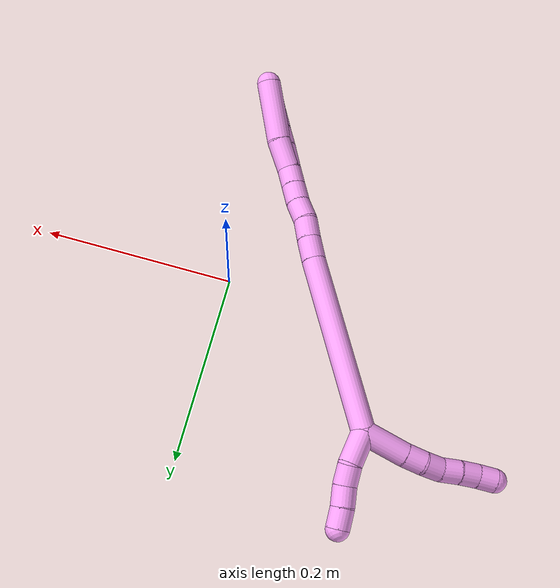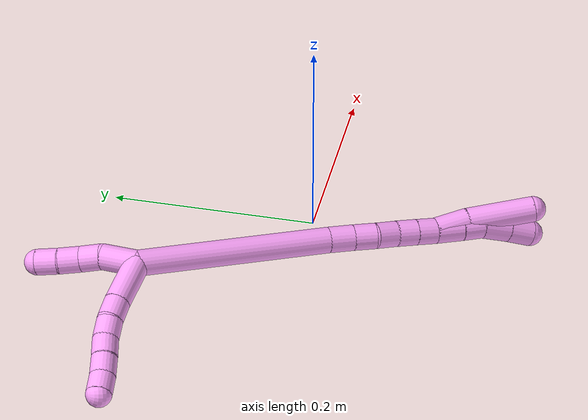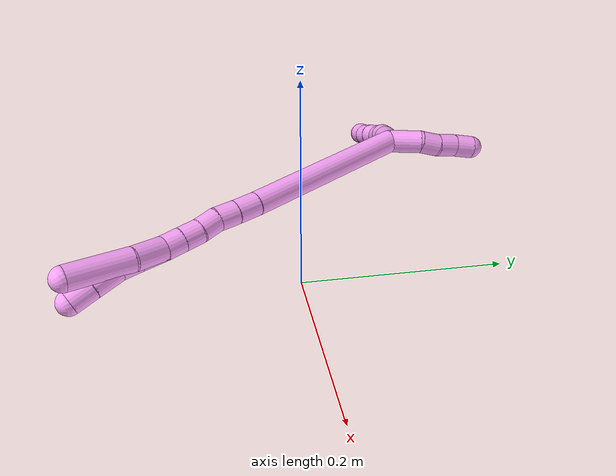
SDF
<sdf version="1.7">
 <world name="default">
  <model name="4">
   <static>0</static>
   <link name="4">
    <collision name="collision-cylinder-e_1_2_8">
     <pose>-0.018037 -0.008372 0.013302 0.561734 -0.854015 -0.261039</pose>
     <geometry><cylinder><radius>0.0125</radius><length>0.047849</length></cylinder></geometry>
     <surface>
      <friction><ode><mu>1.16</mu><mu2>1.16</mu2><slip1>0</slip1><slip2>0</slip2></ode></friction>
      <contact><ode><kp>1e+06</kp><kd>1</kd><max_vel>0</max_vel><min_depth>0.001</min_depth></ode></contact>
     </surface>
    </collision>
    <visual name="visual-cylinder-e_1_2_8">
     <pose>-0.018037 -0.008372 0.013302 0.561734 -0.854015 -0.261039</pose>
     <geometry><cylinder><radius>0.0125</radius><length>0.047849</length></cylinder></geometry>
     <material><ambient>1 0.65098 0.996078 1</ambient></material>
    </visual>
    <collision name="collision-cylinder-e_2_8_9">
     <pose>-0.044212 -0.020985 0.031824 0.682306 -0.880114 -0.331273</pose>
     <geometry><cylinder><radius>0.0125</radius><length>0.021113</length></cylinder></geometry>
     <surface>
      <friction><ode><mu>1.16</mu><mu2>1.16</mu2><slip1>0</slip1><slip2>0</slip2></ode></friction>
      <contact><ode><kp>1e+06</kp><kd>1</kd><max_vel>0</max_vel><min_depth>0.001</min_depth></ode></contact>
     </surface>
    </collision>
    <visual name="visual-cylinder-e_2_8_9">
     <pose>-0.044212 -0.020985 0.031824 0.682306 -0.880114 -0.331273</pose>
     <geometry><cylinder><radius>0.0125</radius><length>0.021113</length></cylinder></geometry>
     <material><ambient>1 0.65098 0.996078 1</ambient></material>
    </visual>
    <collision name="collision-cylinder-e_3_9_10">
     <pose>-0.061203 -0.028341 0.040557 0.725473 -1.08314 -0.448931</pose>
     <geometry><cylinder><radius>0.0125</radius><length>0.020046</length></cylinder></geometry>
     <surface>
      <friction><ode><mu>1.16</mu><mu2>1.16</mu2><slip1>0</slip1><slip2>0</slip2></ode></friction>
      <contact><ode><kp>1e+06</kp><kd>1</kd><max_vel>0</max_vel><min_depth>0.001</min_depth></ode></contact>
     </surface>
    </collision>
    <visual name="visual-cylinder-e_3_9_10">
     <pose>-0.061203 -0.028341 0.040557 0.725473 -1.08314 -0.448931</pose>
     <geometry><cylinder><radius>0.0125</radius><length>0.020046</length></cylinder></geometry>
     <material><ambient>1 0.65098 0.996078 1</ambient></material>
    </visual>
    <collision name="collision-cylinder-e_4_10_11">
     <pose>-0.078517 -0.03679 0.046667 1.11764 -0.959307 -0.628944</pose>
     <geometry><cylinder><radius>0.0125</radius><length>0.020662</length></cylinder></geometry>
     <surface>
      <friction><ode><mu>1.16</mu><mu2>1.16</mu2><slip1>0</slip1><slip2>0</slip2></ode></friction>
      <contact><ode><kp>1e+06</kp><kd>1</kd><max_vel>0</max_vel><min_depth>0.001</min_depth></ode></contact>
     </surface>
    </collision>
    <visual name="visual-cylinder-e_4_10_11">
     <pose>-0.078517 -0.03679 0.046667 1.11764 -0.959307 -0.628944</pose>
     <geometry><cylinder><radius>0.0125</radius><length>0.020662</length></cylinder></geometry>
     <material><ambient>1 0.65098 0.996078 1</ambient></material>
    </visual>
    <collision name="collision-cylinder-e_5_11_12">
     <pose>-0.095707 -0.046557 0.05195 1.02622 -1.03492 -0.620695</pose>
     <geometry><cylinder><radius>0.0125</radius><length>0.02031</length></cylinder></geometry>
     <surface>
      <friction><ode><mu>1.16</mu><mu2>1.16</mu2><slip1>0</slip1><slip2>0</slip2></ode></friction>
      <contact><ode><kp>1e+06</kp><kd>1</kd><max_vel>0</max_vel><min_depth>0.001</min_depth></ode></contact>
     </surface>
    </collision>
    <visual name="visual-cylinder-e_5_11_12">
     <pose>-0.095707 -0.046557 0.05195 1.02622 -1.03492 -0.620695</pose>
     <geometry><cylinder><radius>0.0125</radius><length>0.02031</length></cylinder></geometry>
     <material><ambient>1 0.65098 0.996078 1</ambient></material>
    </visual>
    <collision name="collision-cylinder-e_6_12_6">
     <pose>-0.112358 -0.055895 0.058305 0.928428 -0.912628 -0.482008</pose>
     <geometry><cylinder><radius>0.0125</radius><length>0.02002</length></cylinder></geometry>
     <surface>
      <friction><ode><mu>1.16</mu><mu2>1.16</mu2><slip1>0</slip1><slip2>0</slip2></ode></friction>
      <contact><ode><kp>1e+06</kp><kd>1</kd><max_vel>0</max_vel><min_depth>0.001</min_depth></ode></contact>
     </surface>
    </collision>
    <visual name="visual-cylinder-e_6_12_6">
     <pose>-0.112358 -0.055895 0.058305 0.928428 -0.912628 -0.482008</pose>
     <geometry><cylinder><radius>0.0125</radius><length>0.02002</length></cylinder></geometry>
     <material><ambient>1 0.65098 0.996078 1</ambient></material>
    </visual>
    <collision name="collision-cylinder-e_1_2_13">
     <pose>0.003757 0.010601 0.013533 -0.664531 0.215174 -0.074501</pose>
     <geometry><cylinder><radius>0.0125</radius><length>0.035193</length></cylinder></geometry>
     <surface>
      <friction><ode><mu>1.16</mu><mu2>1.16</mu2><slip1>0</slip1><slip2>0</slip2></ode></friction>
      <contact><ode><kp>1e+06</kp><kd>1</kd><max_vel>0</max_vel><min_depth>0.001</min_depth></ode></contact>
     </surface>
    </collision>
    <visual name="visual-cylinder-e_1_2_13">
     <pose>0.003757 0.010601 0.013533 -0.664531 0.215174 -0.074501</pose>
     <geometry><cylinder><radius>0.0125</radius><length>0.035193</length></cylinder></geometry>
     <material><ambient>1 0.65098 0.996078 1</ambient></material>
    </visual>
    <collision name="collision-cylinder-e_2_13_14">
     <pose>0.006802 0.027953 0.035328 -0.684991 -0.066702 0.02379</pose>
     <geometry><cylinder><radius>0.0125</radius><length>0.021387</length></cylinder></geometry>
     <surface>
      <friction><ode><mu>1.16</mu><mu2>1.16</mu2><slip1>0</slip1><slip2>0</slip2></ode></friction>
      <contact><ode><kp>1e+06</kp><kd>1</kd><max_vel>0</max_vel><min_depth>0.001</min_depth></ode></contact>
     </surface>
    </collision>
    <visual name="visual-cylinder-e_2_13_14">
     <pose>0.006802 0.027953 0.035328 -0.684991 -0.066702 0.02379</pose>
     <geometry><cylinder><radius>0.0125</radius><length>0.021387</length></cylinder></geometry>
     <material><ambient>1 0.65098 0.996078 1</ambient></material>
    </visual>
    <collision name="collision-cylinder-e_3_14_15">
     <pose>0.005557 0.03984 0.053142 -0.493422 -0.048963 0.012333</pose>
     <geometry><cylinder><radius>0.0125</radius><length>0.021715</length></cylinder></geometry>
     <surface>
      <friction><ode><mu>1.16</mu><mu2>1.16</mu2><slip1>0</slip1><slip2>0</slip2></ode></friction>
      <contact><ode><kp>1e+06</kp><kd>1</kd><max_vel>0</max_vel><min_depth>0.001</min_depth></ode></contact>
     </surface>
    </collision>
    <visual name="visual-cylinder-e_3_14_15">
     <pose>0.005557 0.03984 0.053142 -0.493422 -0.048963 0.012333</pose>
     <geometry><cylinder><radius>0.0125</radius><length>0.021715</length></cylinder></geometry>
     <material><ambient>1 0.65098 0.996078 1</ambient></material>
    </visual>
    <collision name="collision-cylinder-e_4_15_5">
     <pose>0.004944 0.051238 0.071557 -0.615063 -0.007596 0.002413</pose>
     <geometry><cylinder><radius>0.0125</radius><length>0.021704</length></cylinder></geometry>
     <surface>
      <friction><ode><mu>1.16</mu><mu2>1.16</mu2><slip1>0</slip1><slip2>0</slip2></ode></friction>
      <contact><ode><kp>1e+06</kp><kd>1</kd><max_vel>0</max_vel><min_depth>0.001</min_depth></ode></contact>
     </surface>
    </collision>
    <visual name="visual-cylinder-e_4_15_5">
     <pose>0.004944 0.051238 0.071557 -0.615063 -0.007596 0.002413</pose>
     <geometry><cylinder><radius>0.0125</radius><length>0.021704</length></cylinder></geometry>
     <material><ambient>1 0.65098 0.996078 1</ambient></material>
    </visual>
    <collision name="collision-cylinder-e_1_2_16">
     <pose>0.0081 -0.005843 -0.094757 3.08001 0.085111 1.88914</pose>
     <geometry><cylinder><radius>0.0125</radius><length>0.190564</length></cylinder></geometry>
     <surface>
      <friction><ode><mu>1.16</mu><mu2>1.16</mu2><slip1>0</slip1><slip2>0</slip2></ode></friction>
      <contact><ode><kp>1e+06</kp><kd>1</kd><max_vel>0</max_vel><min_depth>0.001</min_depth></ode></contact>
     </surface>
    </collision>
    <visual name="visual-cylinder-e_1_2_16">
     <pose>0.0081 -0.005843 -0.094757 3.08001 0.085111 1.88914</pose>
     <geometry><cylinder><radius>0.0125</radius><length>0.190564</length></cylinder></geometry>
     <material><ambient>1 0.65098 0.996078 1</ambient></material>
    </visual>
    <collision name="collision-cylinder-e_2_16_17">
     <pose>0.016953 -0.013046 -0.201765 3.03097 0.061072 1.0083</pose>
     <geometry><cylinder><radius>0.0125</radius><length>0.024698</length></cylinder></geometry>
     <surface>
      <friction><ode><mu>1.16</mu><mu2>1.16</mu2><slip1>0</slip1><slip2>0</slip2></ode></friction>
      <contact><ode><kp>1e+06</kp><kd>1</kd><max_vel>0</max_vel><min_depth>0.001</min_depth></ode></contact>
     </surface>
    </collision>
    <visual name="visual-cylinder-e_2_16_17">
     <pose>0.016953 -0.013046 -0.201765 3.03097 0.061072 1.0083</pose>
     <geometry><cylinder><radius>0.0125</radius><length>0.024698</length></cylinder></geometry>
     <material><ambient>1 0.65098 0.996078 1</ambient></material>
    </visual>
    <collision name="collision-cylinder-e_3_17_18">
     <pose>0.018196 -0.016048 -0.224874 2.99161 0.044469 0.575522</pose>
     <geometry><cylinder><radius>0.0125</radius><length>0.021986</length></cylinder></geometry>
     <surface>
      <friction><ode><mu>1.16</mu><mu2>1.16</mu2><slip1>0</slip1><slip2>0</slip2></ode></friction>
      <contact><ode><kp>1e+06</kp><kd>1</kd><max_vel>0</max_vel><min_depth>0.001</min_depth></ode></contact>
     </surface>
    </collision>
    <visual name="visual-cylinder-e_3_17_18">
     <pose>0.018196 -0.016048 -0.224874 2.99161 0.044469 0.575522</pose>
     <geometry><cylinder><radius>0.0125</radius><length>0.021986</length></cylinder></geometry>
     <material><ambient>1 0.65098 0.996078 1</ambient></material>
    </visual>
    <collision name="collision-cylinder-e_4_18_19">
     <pose>0.019405 -0.01685 -0.246718 -3.06537 0.065315 -1.41685</pose>
     <geometry><cylinder><radius>0.0125</radius><length>0.022081</length></cylinder></geometry>
     <surface>
      <friction><ode><mu>1.16</mu><mu2>1.16</mu2><slip1>0</slip1><slip2>0</slip2></ode></friction>
      <contact><ode><kp>1e+06</kp><kd>1</kd><max_vel>0</max_vel><min_depth>0.001</min_depth></ode></contact>
     </surface>
    </collision>
    <visual name="visual-cylinder-e_4_18_19">
     <pose>0.019405 -0.01685 -0.246718 -3.06537 0.065315 -1.41685</pose>
     <geometry><cylinder><radius>0.0125</radius><length>0.022081</length></cylinder></geometry>
     <material><ambient>1 0.65098 0.996078 1</ambient></material>
    </visual>
    <collision name="collision-cylinder-e_5_19_20">
     <pose>0.020609 -0.016634 -0.267986 3.08114 0.046852 1.31859</pose>
     <geometry><cylinder><radius>0.0125</radius><length>0.020625</length></cylinder></geometry>
     <surface>
      <friction><ode><mu>1.16</mu><mu2>1.16</mu2><slip1>0</slip1><slip2>0</slip2></ode></friction>
      <contact><ode><kp>1e+06</kp><kd>1</kd><max_vel>0</max_vel><min_depth>0.001</min_depth></ode></contact>
     </surface>
    </collision>
    <visual name="visual-cylinder-e_5_19_20">
     <pose>0.020609 -0.016634 -0.267986 3.08114 0.046852 1.31859</pose>
     <geometry><cylinder><radius>0.0125</radius><length>0.020625</length></cylinder></geometry>
     <material><ambient>1 0.65098 0.996078 1</ambient></material>
    </visual>
    <collision name="collision-cylinder-e_6_20_1">
     <pose>0.021476 -0.017867 -0.288265 3.08056 0.038363 1.12217</pose>
     <geometry><cylinder><radius>0.0125</radius><length>0.020046</length></cylinder></geometry>
     <surface>
      <friction><ode><mu>1.16</mu><mu2>1.16</mu2><slip1>0</slip1><slip2>0</slip2></ode></friction>
      <contact><ode><kp>1e+06</kp><kd>1</kd><max_vel>0</max_vel><min_depth>0.001</min_depth></ode></contact>
     </surface>
    </collision>
    <visual name="visual-cylinder-e_6_20_1">
     <pose>0.021476 -0.017867 -0.288265 3.08056 0.038363 1.12217</pose>
     <geometry><cylinder><radius>0.0125</radius><length>0.020046</length></cylinder></geometry>
     <material><ambient>1 0.65098 0.996078 1</ambient></material>
    </visual>
    <collision name="collision-cylinder-e_1_1_21">
     <pose>0.022822 -0.019891 -0.311615 3.03614 0.071478 1.19094</pose>
     <geometry><cylinder><radius>0.0125</radius><length>0.026925</length></cylinder></geometry>
     <surface>
      <friction><ode><mu>1.16</mu><mu2>1.16</mu2><slip1>0</slip1><slip2>0</slip2></ode></friction>
      <contact><ode><kp>1e+06</kp><kd>1</kd><max_vel>0</max_vel><min_depth>0.001</min_depth></ode></contact>
     </surface>
    </collision>
    <visual name="visual-cylinder-e_1_1_21">
     <pose>0.022822 -0.019891 -0.311615 3.03614 0.071478 1.19094</pose>
     <geometry><cylinder><radius>0.0125</radius><length>0.026925</length></cylinder></geometry>
     <material><ambient>1 0.65098 0.996078 1</ambient></material>
    </visual>
    <collision name="collision-cylinder-e_2_21_22">
     <pose>0.024752 -0.022128 -0.335318 3.06213 0.093079 1.72846</pose>
     <geometry><cylinder><radius>0.0125</radius><length>0.020855</length></cylinder></geometry>
     <surface>
      <friction><ode><mu>1.16</mu><mu2>1.16</mu2><slip1>0</slip1><slip2>0</slip2></ode></friction>
      <contact><ode><kp>1e+06</kp><kd>1</kd><max_vel>0</max_vel><min_depth>0.001</min_depth></ode></contact>
     </surface>
    </collision>
    <visual name="visual-cylinder-e_2_21_22">
     <pose>0.024752 -0.022128 -0.335318 3.06213 0.093079 1.72846</pose>
     <geometry><cylinder><radius>0.0125</radius><length>0.020855</length></cylinder></geometry>
     <material><ambient>1 0.65098 0.996078 1</ambient></material>
    </visual>
    <collision name="collision-cylinder-e_3_22_23">
     <pose>0.023664 -0.022375 -0.359403 -3.09953 -0.148597 2.59082</pose>
     <geometry><cylinder><radius>0.0125</radius><length>0.027801</length></cylinder></geometry>
     <surface>
      <friction><ode><mu>1.16</mu><mu2>1.16</mu2><slip1>0</slip1><slip2>0</slip2></ode></friction>
      <contact><ode><kp>1e+06</kp><kd>1</kd><max_vel>0</max_vel><min_depth>0.001</min_depth></ode></contact>
     </surface>
    </collision>
    <visual name="visual-cylinder-e_3_22_23">
     <pose>0.023664 -0.022375 -0.359403 -3.09953 -0.148597 2.59082</pose>
     <geometry><cylinder><radius>0.0125</radius><length>0.027801</length></cylinder></geometry>
     <material><ambient>1 0.65098 0.996078 1</ambient></material>
    </visual>
    <collision name="collision-cylinder-e_4_23_4">
     <pose>0.019259 -0.021299 -0.38511 -3.10007 -0.193402 2.71986</pose>
     <geometry><cylinder><radius>0.0125</radius><length>0.02442</length></cylinder></geometry>
     <surface>
      <friction><ode><mu>1.16</mu><mu2>1.16</mu2><slip1>0</slip1><slip2>0</slip2></ode></friction>
      <contact><ode><kp>1e+06</kp><kd>1</kd><max_vel>0</max_vel><min_depth>0.001</min_depth></ode></contact>
     </surface>
    </collision>
    <visual name="visual-cylinder-e_4_23_4">
     <pose>0.019259 -0.021299 -0.38511 -3.10007 -0.193402 2.71986</pose>
     <geometry><cylinder><radius>0.0125</radius><length>0.02442</length></cylinder></geometry>
     <material><ambient>1 0.65098 0.996078 1</ambient></material>
    </visual>
    <collision name="collision-cylinder-e_1_1_24">
     <pose>0.026195 -0.020128 -0.314547 3.04061 0.258868 2.40096</pose>
     <geometry><cylinder><radius>0.0125</radius><length>0.033865</length></cylinder></geometry>
     <surface>
      <friction><ode><mu>1.16</mu><mu2>1.16</mu2><slip1>0</slip1><slip2>0</slip2></ode></friction>
      <contact><ode><kp>1e+06</kp><kd>1</kd><max_vel>0</max_vel><min_depth>0.001</min_depth></ode></contact>
     </surface>
    </collision>
    <visual name="visual-cylinder-e_1_1_24">
     <pose>0.026195 -0.020128 -0.314547 3.04061 0.258868 2.40096</pose>
     <geometry><cylinder><radius>0.0125</radius><length>0.033865</length></cylinder></geometry>
     <material><ambient>1 0.65098 0.996078 1</ambient></material>
    </visual>
    <collision name="collision-cylinder-e_2_24_3">
     <pose>0.035192 -0.028728 -0.362823 2.92766 0.141462 1.16648</pose>
     <geometry><cylinder><radius>0.0125</radius><length>0.066135</length></cylinder></geometry>
     <surface>
      <friction><ode><mu>1.16</mu><mu2>1.16</mu2><slip1>0</slip1><slip2>0</slip2></ode></friction>
      <contact><ode><kp>1e+06</kp><kd>1</kd><max_vel>0</max_vel><min_depth>0.001</min_depth></ode></contact>
     </surface>
    </collision>
    <visual name="visual-cylinder-e_2_24_3">
     <pose>0.035192 -0.028728 -0.362823 2.92766 0.141462 1.16648</pose>
     <geometry><cylinder><radius>0.0125</radius><length>0.066135</length></cylinder></geometry>
     <material><ambient>1 0.65098 0.996078 1</ambient></material>
    </visual>
    <collision name="collision-sphere-3">
     <pose>0.039854 -0.035678 -0.394813 0 -0 0</pose>
     <geometry><sphere><radius>0.0125</radius></sphere></geometry>
     <surface>
      <friction><ode><mu>1.16</mu><mu2>1.16</mu2><slip1>0</slip1><slip2>0</slip2></ode></friction>
      <contact><ode><kp>1e+06</kp><kd>1</kd><max_vel>0</max_vel><min_depth>0.001</min_depth></ode></contact>
     </surface>
    </collision>
    <visual name="visual-sphere-3">
     <pose>0.039854 -0.035678 -0.394813 0 -0 0</pose>
     <geometry><sphere><radius>0.0125</radius></sphere></geometry>
     <material><ambient>1 0.65098 0.996078 1</ambient></material>
    </visual>
    <collision name="collision-sphere-24">
     <pose>0.030529 -0.021778 -0.330832 0 -0 0</pose>
     <geometry><sphere><radius>0.0125</radius></sphere></geometry>
     <surface>
      <friction><ode><mu>1.16</mu><mu2>1.16</mu2><slip1>0</slip1><slip2>0</slip2></ode></friction>
      <contact><ode><kp>1e+06</kp><kd>1</kd><max_vel>0</max_vel><min_depth>0.001</min_depth></ode></contact>
     </surface>
    </collision>
    <visual name="visual-sphere-24">
     <pose>0.030529 -0.021778 -0.330832 0 -0 0</pose>
     <geometry><sphere><radius>0.0125</radius></sphere></geometry>
     <material><ambient>1 0.65098 0.996078 1</ambient></material>
    </visual>
    <collision name="collision-sphere-4">
     <pose>0.016912 -0.020802 -0.397082 0 -0 0</pose>
     <geometry><sphere><radius>0.0125</radius></sphere></geometry>
     <surface>
      <friction><ode><mu>1.16</mu><mu2>1.16</mu2><slip1>0</slip1><slip2>0</slip2></ode></friction>
      <contact><ode><kp>1e+06</kp><kd>1</kd><max_vel>0</max_vel><min_depth>0.001</min_depth></ode></contact>
     </surface>
    </collision>
    <visual name="visual-sphere-4">
     <pose>0.016912 -0.020802 -0.397082 0 -0 0</pose>
     <geometry><sphere><radius>0.0125</radius></sphere></geometry>
     <material><ambient>1 0.65098 0.996078 1</ambient></material>
    </visual>
    <collision name="collision-sphere-23">
     <pose>0.021606 -0.021797 -0.373138 0 -0 0</pose>
     <geometry><sphere><radius>0.0125</radius></sphere></geometry>
     <surface>
      <friction><ode><mu>1.16</mu><mu2>1.16</mu2><slip1>0</slip1><slip2>0</slip2></ode></friction>
      <contact><ode><kp>1e+06</kp><kd>1</kd><max_vel>0</max_vel><min_depth>0.001</min_depth></ode></contact>
     </surface>
    </collision>
    <visual name="visual-sphere-23">
     <pose>0.021606 -0.021797 -0.373138 0 -0 0</pose>
     <geometry><sphere><radius>0.0125</radius></sphere></geometry>
     <material><ambient>1 0.65098 0.996078 1</ambient></material>
    </visual>
    <collision name="collision-sphere-22">
     <pose>0.025722 -0.022953 -0.345668 0 -0 0</pose>
     <geometry><sphere><radius>0.0125</radius></sphere></geometry>
     <surface>
      <friction><ode><mu>1.16</mu><mu2>1.16</mu2><slip1>0</slip1><slip2>0</slip2></ode></friction>
      <contact><ode><kp>1e+06</kp><kd>1</kd><max_vel>0</max_vel><min_depth>0.001</min_depth></ode></contact>
     </surface>
    </collision>
    <visual name="visual-sphere-22">
     <pose>0.025722 -0.022953 -0.345668 0 -0 0</pose>
     <geometry><sphere><radius>0.0125</radius></sphere></geometry>
     <material><ambient>1 0.65098 0.996078 1</ambient></material>
    </visual>
    <collision name="collision-sphere-21">
     <pose>0.023783 -0.021304 -0.324969 0 -0 0</pose>
     <geometry><sphere><radius>0.0125</radius></sphere></geometry>
     <surface>
      <friction><ode><mu>1.16</mu><mu2>1.16</mu2><slip1>0</slip1><slip2>0</slip2></ode></friction>
      <contact><ode><kp>1e+06</kp><kd>1</kd><max_vel>0</max_vel><min_depth>0.001</min_depth></ode></contact>
     </surface>
    </collision>
    <visual name="visual-sphere-21">
     <pose>0.023783 -0.021304 -0.324969 0 -0 0</pose>
     <geometry><sphere><radius>0.0125</radius></sphere></geometry>
     <material><ambient>1 0.65098 0.996078 1</ambient></material>
    </visual>
    <collision name="collision-sphere-1">
     <pose>0.02186 -0.018478 -0.298262 0 -0 0</pose>
     <geometry><sphere><radius>0.0125</radius></sphere></geometry>
     <surface>
      <friction><ode><mu>1.16</mu><mu2>1.16</mu2><slip1>0</slip1><slip2>0</slip2></ode></friction>
      <contact><ode><kp>1e+06</kp><kd>1</kd><max_vel>0</max_vel><min_depth>0.001</min_depth></ode></contact>
     </surface>
    </collision>
    <visual name="visual-sphere-1">
     <pose>0.02186 -0.018478 -0.298262 0 -0 0</pose>
     <geometry><sphere><radius>0.0125</radius></sphere></geometry>
     <material><ambient>1 0.65098 0.996078 1</ambient></material>
    </visual>
    <collision name="collision-sphere-12">
     <pose>-0.104439 -0.050992 0.054636 0 -0 0</pose>
     <geometry><sphere><radius>0.0125</radius></sphere></geometry>
     <surface>
      <friction><ode><mu>1.16</mu><mu2>1.16</mu2><slip1>0</slip1><slip2>0</slip2></ode></friction>
      <contact><ode><kp>1e+06</kp><kd>1</kd><max_vel>0</max_vel><min_depth>0.001</min_depth></ode></contact>
     </surface>
    </collision>
    <visual name="visual-sphere-12">
     <pose>-0.104439 -0.050992 0.054636 0 -0 0</pose>
     <geometry><sphere><radius>0.0125</radius></sphere></geometry>
     <material><ambient>1 0.65098 0.996078 1</ambient></material>
    </visual>
    <collision name="collision-sphere-11">
     <pose>-0.086976 -0.042122 0.049264 0 -0 0</pose>
     <geometry><sphere><radius>0.0125</radius></sphere></geometry>
     <surface>
      <friction><ode><mu>1.16</mu><mu2>1.16</mu2><slip1>0</slip1><slip2>0</slip2></ode></friction>
      <contact><ode><kp>1e+06</kp><kd>1</kd><max_vel>0</max_vel><min_depth>0.001</min_depth></ode></contact>
     </surface>
    </collision>
    <visual name="visual-sphere-11">
     <pose>-0.086976 -0.042122 0.049264 0 -0 0</pose>
     <geometry><sphere><radius>0.0125</radius></sphere></geometry>
     <material><ambient>1 0.65098 0.996078 1</ambient></material>
    </visual>
    <collision name="collision-sphere-10">
     <pose>-0.070058 -0.031457 0.044071 0 -0 0</pose>
     <geometry><sphere><radius>0.0125</radius></sphere></geometry>
     <surface>
      <friction><ode><mu>1.16</mu><mu2>1.16</mu2><slip1>0</slip1><slip2>0</slip2></ode></friction>
      <contact><ode><kp>1e+06</kp><kd>1</kd><max_vel>0</max_vel><min_depth>0.001</min_depth></ode></contact>
     </surface>
    </collision>
    <visual name="visual-sphere-10">
     <pose>-0.070058 -0.031457 0.044071 0 -0 0</pose>
     <geometry><sphere><radius>0.0125</radius></sphere></geometry>
     <material><ambient>1 0.65098 0.996078 1</ambient></material>
    </visual>
    <collision name="collision-sphere-9">
     <pose>-0.052349 -0.025225 0.037043 0 -0 0</pose>
     <geometry><sphere><radius>0.0125</radius></sphere></geometry>
     <surface>
      <friction><ode><mu>1.16</mu><mu2>1.16</mu2><slip1>0</slip1><slip2>0</slip2></ode></friction>
      <contact><ode><kp>1e+06</kp><kd>1</kd><max_vel>0</max_vel><min_depth>0.001</min_depth></ode></contact>
     </surface>
    </collision>
    <visual name="visual-sphere-9">
     <pose>-0.052349 -0.025225 0.037043 0 -0 0</pose>
     <geometry><sphere><radius>0.0125</radius></sphere></geometry>
     <material><ambient>1 0.65098 0.996078 1</ambient></material>
    </visual>
    <collision name="collision-sphere-2">
     <geometry><sphere><radius>0.0125</radius></sphere></geometry>
     <surface>
      <friction><ode><mu>1.16</mu><mu2>1.16</mu2><slip1>0</slip1><slip2>0</slip2></ode></friction>
      <contact><ode><kp>1e+06</kp><kd>1</kd><max_vel>0</max_vel><min_depth>0.001</min_depth></ode></contact>
     </surface>
    </collision>
    <visual name="visual-sphere-2">
     <geometry><sphere><radius>0.0125</radius></sphere></geometry>
     <material><ambient>1 0.65098 0.996078 1</ambient></material>
    </visual>
    <collision name="collision-sphere-19">
     <pose>0.020126 -0.016011 -0.257704 0 -0 0</pose>
     <geometry><sphere><radius>0.0125</radius></sphere></geometry>
     <surface>
      <friction><ode><mu>1.16</mu><mu2>1.16</mu2><slip1>0</slip1><slip2>0</slip2></ode></friction>
      <contact><ode><kp>1e+06</kp><kd>1</kd><max_vel>0</max_vel><min_depth>0.001</min_depth></ode></contact>
     </surface>
    </collision>
    <visual name="visual-sphere-19">
     <pose>0.020126 -0.016011 -0.257704 0 -0 0</pose>
     <geometry><sphere><radius>0.0125</radius></sphere></geometry>
     <material><ambient>1 0.65098 0.996078 1</ambient></material>
    </visual>
    <collision name="collision-sphere-8">
     <pose>-0.036075 -0.016744 0.026604 0 -0 0</pose>
     <geometry><sphere><radius>0.0125</radius></sphere></geometry>
     <surface>
      <friction><ode><mu>1.16</mu><mu2>1.16</mu2><slip1>0</slip1><slip2>0</slip2></ode></friction>
      <contact><ode><kp>1e+06</kp><kd>1</kd><max_vel>0</max_vel><min_depth>0.001</min_depth></ode></contact>
     </surface>
    </collision>
    <visual name="visual-sphere-8">
     <pose>-0.036075 -0.016744 0.026604 0 -0 0</pose>
     <geometry><sphere><radius>0.0125</radius></sphere></geometry>
     <material><ambient>1 0.65098 0.996078 1</ambient></material>
    </visual>
    <collision name="collision-sphere-6">
     <pose>-0.120277 -0.060797 0.061973 0 -0 0</pose>
     <geometry><sphere><radius>0.0125</radius></sphere></geometry>
     <surface>
      <friction><ode><mu>1.16</mu><mu2>1.16</mu2><slip1>0</slip1><slip2>0</slip2></ode></friction>
      <contact><ode><kp>1e+06</kp><kd>1</kd><max_vel>0</max_vel><min_depth>0.001</min_depth></ode></contact>
     </surface>
    </collision>
    <visual name="visual-sphere-6">
     <pose>-0.120277 -0.060797 0.061973 0 -0 0</pose>
     <geometry><sphere><radius>0.0125</radius></sphere></geometry>
     <material><ambient>1 0.65098 0.996078 1</ambient></material>
    </visual>
    <collision name="collision-sphere-13">
     <pose>0.007514 0.021203 0.027065 0 -0 0</pose>
     <geometry><sphere><radius>0.0125</radius></sphere></geometry>
     <surface>
      <friction><ode><mu>1.16</mu><mu2>1.16</mu2><slip1>0</slip1><slip2>0</slip2></ode></friction>
      <contact><ode><kp>1e+06</kp><kd>1</kd><max_vel>0</max_vel><min_depth>0.001</min_depth></ode></contact>
     </surface>
    </collision>
    <visual name="visual-sphere-13">
     <pose>0.007514 0.021203 0.027065 0 -0 0</pose>
     <geometry><sphere><radius>0.0125</radius></sphere></geometry>
     <material><ambient>1 0.65098 0.996078 1</ambient></material>
    </visual>
    <collision name="collision-sphere-14">
     <pose>0.006089 0.034704 0.043591 0 -0 0</pose>
     <geometry><sphere><radius>0.0125</radius></sphere></geometry>
     <surface>
      <friction><ode><mu>1.16</mu><mu2>1.16</mu2><slip1>0</slip1><slip2>0</slip2></ode></friction>
      <contact><ode><kp>1e+06</kp><kd>1</kd><max_vel>0</max_vel><min_depth>0.001</min_depth></ode></contact>
     </surface>
    </collision>
    <visual name="visual-sphere-14">
     <pose>0.006089 0.034704 0.043591 0 -0 0</pose>
     <geometry><sphere><radius>0.0125</radius></sphere></geometry>
     <material><ambient>1 0.65098 0.996078 1</ambient></material>
    </visual>
    <collision name="collision-sphere-15">
     <pose>0.005026 0.044977 0.062693 0 -0 0</pose>
     <geometry><sphere><radius>0.0125</radius></sphere></geometry>
     <surface>
      <friction><ode><mu>1.16</mu><mu2>1.16</mu2><slip1>0</slip1><slip2>0</slip2></ode></friction>
      <contact><ode><kp>1e+06</kp><kd>1</kd><max_vel>0</max_vel><min_depth>0.001</min_depth></ode></contact>
     </surface>
    </collision>
    <visual name="visual-sphere-15">
     <pose>0.005026 0.044977 0.062693 0 -0 0</pose>
     <geometry><sphere><radius>0.0125</radius></sphere></geometry>
     <material><ambient>1 0.65098 0.996078 1</ambient></material>
    </visual>
    <collision name="collision-sphere-5">
     <pose>0.004861 0.0575 0.08042 0 -0 0</pose>
     <geometry><sphere><radius>0.0125</radius></sphere></geometry>
     <surface>
      <friction><ode><mu>1.16</mu><mu2>1.16</mu2><slip1>0</slip1><slip2>0</slip2></ode></friction>
      <contact><ode><kp>1e+06</kp><kd>1</kd><max_vel>0</max_vel><min_depth>0.001</min_depth></ode></contact>
     </surface>
    </collision>
    <visual name="visual-sphere-5">
     <pose>0.004861 0.0575 0.08042 0 -0 0</pose>
     <geometry><sphere><radius>0.0125</radius></sphere></geometry>
     <material><ambient>1 0.65098 0.996078 1</ambient></material>
    </visual>
    <collision name="collision-sphere-16">
     <pose>0.0162 -0.011686 -0.189514 0 -0 0</pose>
     <geometry><sphere><radius>0.0125</radius></sphere></geometry>
     <surface>
      <friction><ode><mu>1.16</mu><mu2>1.16</mu2><slip1>0</slip1><slip2>0</slip2></ode></friction>
      <contact><ode><kp>1e+06</kp><kd>1</kd><max_vel>0</max_vel><min_depth>0.001</min_depth></ode></contact>
     </surface>
    </collision>
    <visual name="visual-sphere-16">
     <pose>0.0162 -0.011686 -0.189514 0 -0 0</pose>
     <geometry><sphere><radius>0.0125</radius></sphere></geometry>
     <material><ambient>1 0.65098 0.996078 1</ambient></material>
    </visual>
    <collision name="collision-sphere-17">
     <pose>0.017707 -0.014407 -0.214016 0 -0 0</pose>
     <geometry><sphere><radius>0.0125</radius></sphere></geometry>
     <surface>
      <friction><ode><mu>1.16</mu><mu2>1.16</mu2><slip1>0</slip1><slip2>0</slip2></ode></friction>
      <contact><ode><kp>1e+06</kp><kd>1</kd><max_vel>0</max_vel><min_depth>0.001</min_depth></ode></contact>
     </surface>
    </collision>
    <visual name="visual-sphere-17">
     <pose>0.017707 -0.014407 -0.214016 0 -0 0</pose>
     <geometry><sphere><radius>0.0125</radius></sphere></geometry>
     <material><ambient>1 0.65098 0.996078 1</ambient></material>
    </visual>
    <collision name="collision-sphere-18">
     <pose>0.018684 -0.017689 -0.235733 0 -0 0</pose>
     <geometry><sphere><radius>0.0125</radius></sphere></geometry>
     <surface>
      <friction><ode><mu>1.16</mu><mu2>1.16</mu2><slip1>0</slip1><slip2>0</slip2></ode></friction>
      <contact><ode><kp>1e+06</kp><kd>1</kd><max_vel>0</max_vel><min_depth>0.001</min_depth></ode></contact>
     </surface>
    </collision>
    <visual name="visual-sphere-18">
     <pose>0.018684 -0.017689 -0.235733 0 -0 0</pose>
     <geometry><sphere><radius>0.0125</radius></sphere></geometry>
     <material><ambient>1 0.65098 0.996078 1</ambient></material>
    </visual>
    <collision name="collision-sphere-20">
     <pose>0.021092 -0.017256 -0.278268 0 -0 0</pose>
     <geometry><sphere><radius>0.0125</radius></sphere></geometry>
     <surface>
      <friction><ode><mu>1.16</mu><mu2>1.16</mu2><slip1>0</slip1><slip2>0</slip2></ode></friction>
      <contact><ode><kp>1e+06</kp><kd>1</kd><max_vel>0</max_vel><min_depth>0.001</min_depth></ode></contact>
     </surface>
    </collision>
    <visual name="visual-sphere-20">
     <pose>0.021092 -0.017256 -0.278268 0 -0 0</pose>
     <geometry><sphere><radius>0.0125</radius></sphere></geometry>
     <material><ambient>1 0.65098 0.996078 1</ambient></material>
    </visual>
    <inertial>
     <pose>0.001049 -0.011828 -0.13989 0 -0 0</pose>
     <mass>0.75</mass>
     <inertia>
      <ixx>0.000426</ixx>
      <ixy>0</ixy>
      <ixz>0</ixz>
      <iyy>0.000787</iyy>
      <iyz>0</iyz>
      <izz>-2.4e-05</izz>
     </inertia>
    </inertial>
   </link>
   <pose>-0.178383 0.131649 0.063288 -1.25505 -0.900273 0.275354</pose>
  </model>
 </world>
</sdf>
